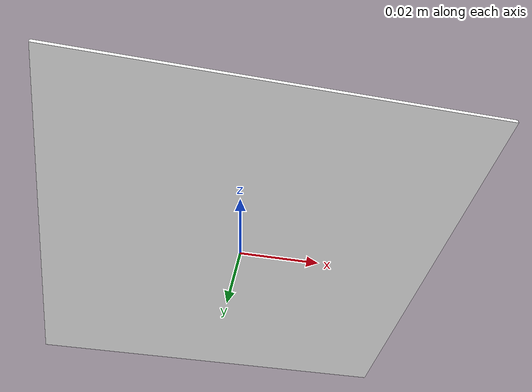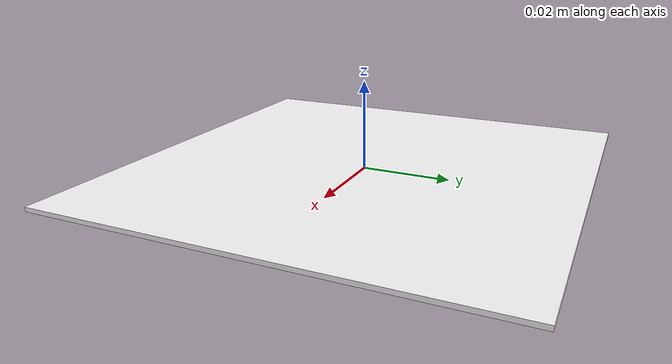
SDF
<?xml version='1.0'?>
<sdf version='1.6'>
  <model name='apriltag_d'>
    <link name='main'>
    <pose frame=''>0 0 0 0 0 0</pose>
      <visual name='main_at'>
        <geometry>
          <mesh>
            <scale>0.098 0.098 0.098</scale>
            <uri>model://apriltag_d/meshes/apriltag.dae</uri>
          </mesh>
        </geometry>
        <material>
          <diffuse>1.0 1.0 1.0</diffuse>
          <specular>1.0 1.0 1.0</specular>
          <pbr>
            <metal>
              <albedo_map>model://apriltag_d/meshes/tag36_11_00001.png</albedo_map>
            </metal>
          </pbr>
        </material>
      </visual>
     </link>
    <static>1</static>
  </model>
</sdf>
